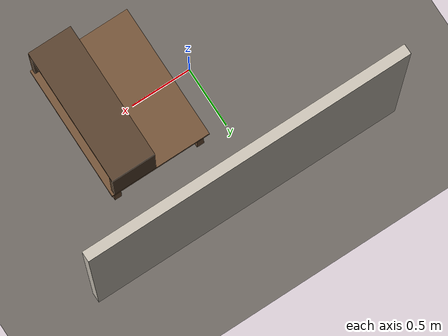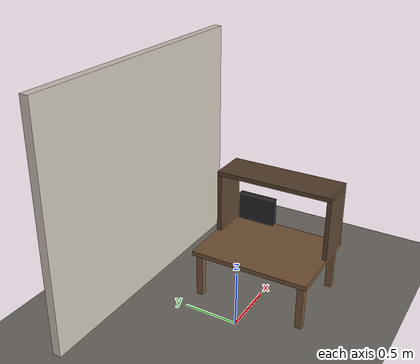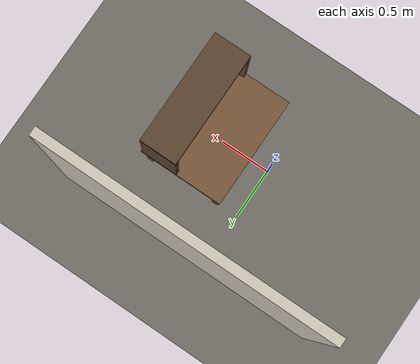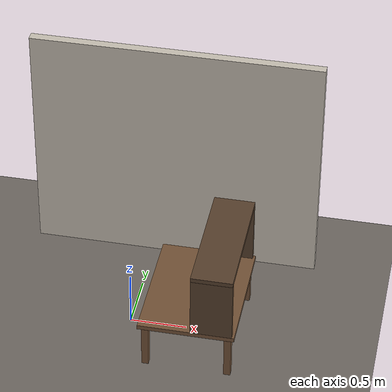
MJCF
<mujoco model="real_env_3_desk_hutch">
  <compiler angle="radian" autolimits="true" boundmass="0" balanceinertia="true"/>
  <option impratio="10" gravity="0 0 -9.8" integrator="implicitfast" cone="elliptic" jacobian="sparse" noslip_iterations="4">
    <flag multiccd="enable" contact="enable" warmstart="enable"/>
  </option>
  <size njmax="8000" nconmax="8000"/>
  <visual><global offwidth="1280" offheight="720"/><map znear="0.001"/>
    <headlight ambient="0.42 0.42 0.42" diffuse="0.55 0.55 0.55"/></visual>
  <asset>
    <texture name="woodtex" type="2d" builtin="flat" rgb1="0.46 0.33 0.22" width="32" height="32"/>
    <material name="wood" texture="woodtex" reflectance="0.05"/>
    <texture name="wood2tex" type="2d" builtin="flat" rgb1="0.35 0.26 0.18" width="32" height="32"/>
    <material name="wood2" texture="wood2tex" reflectance="0.05"/>
    <texture name="floortex" type="2d" builtin="checker" rgb1="0.47 0.45 0.42" rgb2="0.40 0.38 0.36" width="300" height="300"/>
    <material name="floormat" texture="floortex" texrepeat="10 10" reflectance="0.05"/>
  </asset>
  <default>
    <default class="furniture">
      <geom contype="8" conaffinity="15" group="0" friction="0.9 0.9 0.001"
            solref="0.02 1" solimp="0.998 0.998 0.001" density="700" material="wood"/>
    </default>
    <default class="furniture2">
      <geom contype="8" conaffinity="15" group="0" friction="0.9 0.9 0.001"
            solref="0.02 1" solimp="0.998 0.998 0.001" density="700" material="wood2"/>
    </default>
  </default>
  <worldbody>
    <light pos="0.3 0.5 2.6" dir="0 0 -1" diffuse="0.65 0.65 0.65"/>
    <light pos="-0.8 -0.8 2.2" dir="0.3 0.3 -1" diffuse="0.3 0.3 0.3"/>
    <geom name="floor" type="plane" size="5 5 0.1" pos="0 0 0" material="floormat" contype="8" conaffinity="15"/>
    <geom name="table_top" type="box" pos="0.6 0 0.44" size="0.42 0.55 0.02" class="furniture"/>
    <geom name="table_leg0" type="box" pos="0.96 0.49000000000000005 0.21" size="0.03 0.03 0.21" class="furniture"/>
    <geom name="table_leg1" type="box" pos="0.96 -0.49000000000000005 0.21" size="0.03 0.03 0.21" class="furniture"/>
    <geom name="table_leg2" type="box" pos="0.24 0.49000000000000005 0.21" size="0.03 0.03 0.21" class="furniture"/>
    <geom name="table_leg3" type="box" pos="0.24 -0.49000000000000005 0.21" size="0.03 0.03 0.21" class="furniture"/>
    <geom name="hutch_shelf" type="box" pos="0.82 0 1.05" size="0.18 0.55 0.02" class="furniture2"/>
    <geom name="hutch_side_l" type="box" pos="0.82 0.53 0.745" size="0.18 0.02 0.285" class="furniture2"/>
    <geom name="hutch_side_r" type="box" pos="0.82 -0.53 0.745" size="0.18 0.02 0.285" class="furniture2"/>
    <geom name="monitor" type="box" pos="0.88 0.25 0.66" size="0.03 0.18 0.13" contype="8" conaffinity="15" rgba="0.15 0.15 0.17 1"/>
    <geom name="wall_side" type="box" pos="0.2 1.05 1.1" size="1.3 0.04 1.1" contype="8" conaffinity="15" rgba="0.80 0.77 0.72 1"/>
    <site name="target_spot" pos="0.48 -0.05 0.46" size="0.01" rgba="0 0 0 0"/>
  </worldbody>
</mujoco>
